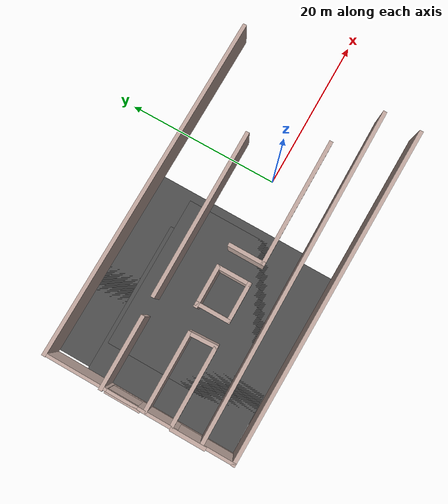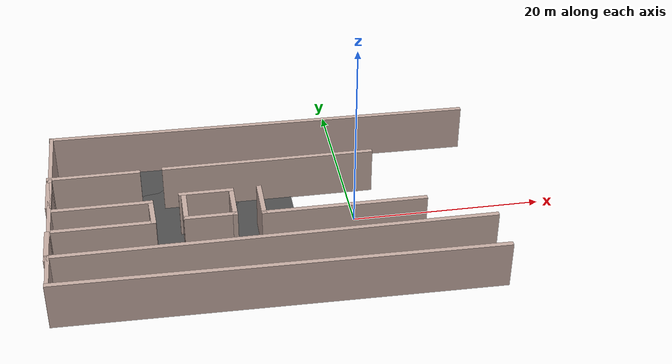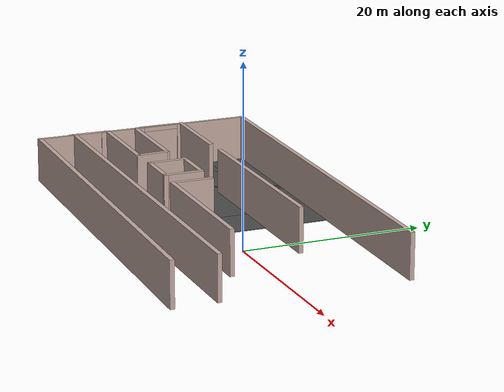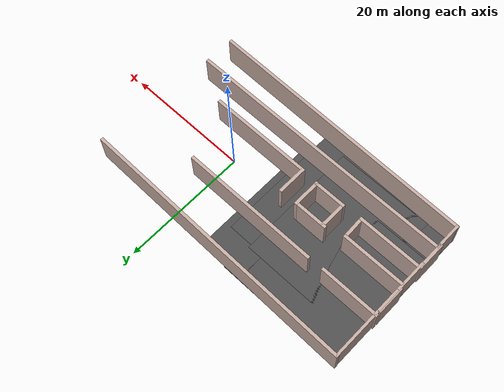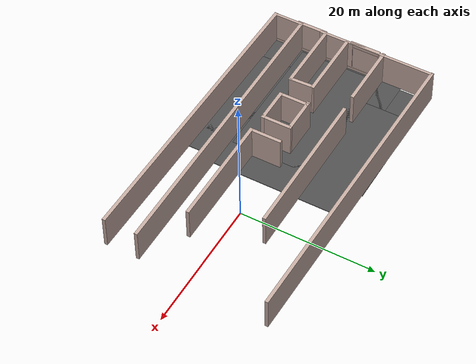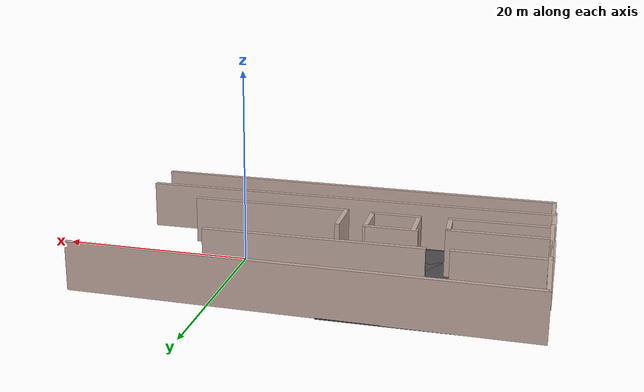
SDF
<sdf version="1.6">
 <model name="engineering_815">
  <link name="Wall_345">
   <pose>-30.9928 0.350371 0 0 0 -1.5708</pose>
   <visual name="Wall_345_Visual_3">
    <pose>10.2836 0 2.75 0 -0 0</pose>
    <geometry><box><size>4.43242 0.4 4.5</size></box></geometry>
    <material>
     <script><uri>file://media/materials/scripts/gazebo.material</uri><name>Gazebo/Grey</name></script>
     <ambient>0.760784 0.662745 0.627451 1</ambient>
     <diffuse>0.7 0.7 0.7 1</diffuse>
     <specular>0.01 0.01 0.01 1</specular>
     <emissive>0 0 0 1</emissive>
    </material>
   </visual>
   <visual name="Wall_345_Visual_2">
    <pose>2.46579 0 2.75 0 -0 0</pose>
    <geometry><box><size>5.20312 0.4 4.5</size></box></geometry>
    <material>
     <script><uri>file://media/materials/scripts/gazebo.material</uri><name>Gazebo/Grey</name></script>
     <ambient>0.760784 0.662745 0.627451 1</ambient>
     <diffuse>0.7 0.7 0.7 1</diffuse>
     <specular>0.01 0.01 0.01 1</specular>
     <emissive>0 0 0 1</emissive>
    </material>
   </visual>
   <visual name="Wall_345_Visual_4">
    <pose>-2.13577 0 4.75 0 -0 0</pose>
    <geometry><box><size>4 0.4 0.5</size></box></geometry>
    <material>
     <script><uri>file://media/materials/scripts/gazebo.material</uri><name>Gazebo/Grey</name></script>
     <ambient>0.760784 0.662745 0.627451 1</ambient>
     <diffuse>0.7 0.7 0.7 1</diffuse>
     <specular>0.01 0.01 0.01 1</specular>
     <emissive>0 0 0 1</emissive>
    </material>
   </visual>
   <visual name="Wall_345_Visual_1">
    <pose>4.182 0 0.25 0 -0 0</pose>
    <geometry><box><size>16.6355 0.4 0.5</size></box></geometry>
    <material>
     <script><uri>file://media/materials/scripts/gazebo.material</uri><name>Gazebo/Grey</name></script>
     <ambient>0.760784 0.662745 0.627451 1</ambient>
     <diffuse>0.7 0.7 0.7 1</diffuse>
     <specular>0.01 0.01 0.01 1</specular>
     <emissive>0 0 0 1</emissive>
    </material>
   </visual>
   <visual name="Wall_345_Visual_0">
    <pose>-8.31777 0 2.5 0 -0 0</pose>
    <geometry><box><size>8.36401 0.4 5</size></box></geometry>
    <material>
     <script><uri>file://media/materials/scripts/gazebo.material</uri><name>Gazebo/Grey</name></script>
     <ambient>0.760784 0.662745 0.627451 1</ambient>
     <diffuse>0.7 0.7 0.7 1</diffuse>
     <specular>0.01 0.01 0.01 1</specular>
     <emissive>0 0 0 1</emissive>
    </material>
   </visual>
   <collision name="Wall_345_Collision_4">
    <pose>-2.13577 0 4.75 0 -0 0</pose>
    <geometry><box><size>4 0.4 0.5</size></box></geometry>
    <surface>
     <friction>
      <ode><mu>1</mu><mu2>1</mu2><fdir1>0 0 0</fdir1><slip1>0</slip1><slip2>0</slip2></ode>
      <torsional>
       <coefficient>1</coefficient>
       <patch_radius>0</patch_radius>
       <surface_radius>0</surface_radius>
       <use_patch_radius>1</use_patch_radius>
       <ode><slip>0</slip></ode>
      </torsional>
     </friction>
     <bounce><restitution_coefficient>0</restitution_coefficient><threshold>1e+06</threshold></bounce>
     <contact>
      <collide_without_contact>0</collide_without_contact>
      <collide_without_contact_bitmask>1</collide_without_contact_bitmask>
      <collide_bitmask>1</collide_bitmask>
      <ode>
       <soft_cfm>0</soft_cfm>
       <soft_erp>0.2</soft_erp>
       <kp>1e+13</kp>
       <kd>1</kd>
       <max_vel>0.01</max_vel>
       <min_depth>0</min_depth>
      </ode>
      <bullet>
       <split_impulse>1</split_impulse>
       <split_impulse_penetration_threshold>-0.01</split_impulse_penetration_threshold>
       <soft_cfm>0</soft_cfm>
       <soft_erp>0.2</soft_erp>
       <kp>1e+13</kp>
       <kd>1</kd>
      </bullet>
     </contact>
    </surface>
   </collision>
   <collision name="Wall_345_Collision_3">
    <pose>10.2836 0 2.75 0 -0 0</pose>
    <geometry><box><size>4.43242 0.4 4.5</size></box></geometry>
    <surface>
     <friction>
      <ode><mu>1</mu><mu2>1</mu2><fdir1>0 0 0</fdir1><slip1>0</slip1><slip2>0</slip2></ode>
      <torsional>
       <coefficient>1</coefficient>
       <patch_radius>0</patch_radius>
       <surface_radius>0</surface_radius>
       <use_patch_radius>1</use_patch_radius>
       <ode><slip>0</slip></ode>
      </torsional>
     </friction>
     <bounce><restitution_coefficient>0</restitution_coefficient><threshold>1e+06</threshold></bounce>
     <contact>
      <collide_without_contact>0</collide_without_contact>
      <collide_without_contact_bitmask>1</collide_without_contact_bitmask>
      <collide_bitmask>1</collide_bitmask>
      <ode>
       <soft_cfm>0</soft_cfm>
       <soft_erp>0.2</soft_erp>
       <kp>1e+13</kp>
       <kd>1</kd>
       <max_vel>0.01</max_vel>
       <min_depth>0</min_depth>
      </ode>
      <bullet>
       <split_impulse>1</split_impulse>
       <split_impulse_penetration_threshold>-0.01</split_impulse_penetration_threshold>
       <soft_cfm>0</soft_cfm>
       <soft_erp>0.2</soft_erp>
       <kp>1e+13</kp>
       <kd>1</kd>
      </bullet>
     </contact>
    </surface>
   </collision>
   <collision name="Wall_345_Collision_1">
    <pose>4.182 0 0.25 0 -0 0</pose>
    <geometry><box><size>16.6355 0.4 0.5</size></box></geometry>
    <surface>
     <friction>
      <ode><mu>1</mu><mu2>1</mu2><fdir1>0 0 0</fdir1><slip1>0</slip1><slip2>0</slip2></ode>
      <torsional>
       <coefficient>1</coefficient>
       <patch_radius>0</patch_radius>
       <surface_radius>0</surface_radius>
       <use_patch_radius>1</use_patch_radius>
       <ode><slip>0</slip></ode>
      </torsional>
     </friction>
     <bounce><restitution_coefficient>0</restitution_coefficient><threshold>1e+06</threshold></bounce>
     <contact>
      <collide_without_contact>0</collide_without_contact>
      <collide_without_contact_bitmask>1</collide_without_contact_bitmask>
      <collide_bitmask>1</collide_bitmask>
      <ode>
       <soft_cfm>0</soft_cfm>
       <soft_erp>0.2</soft_erp>
       <kp>1e+13</kp>
       <kd>1</kd>
       <max_vel>0.01</max_vel>
       <min_depth>0</min_depth>
      </ode>
      <bullet>
       <split_impulse>1</split_impulse>
       <split_impulse_penetration_threshold>-0.01</split_impulse_penetration_threshold>
       <soft_cfm>0</soft_cfm>
       <soft_erp>0.2</soft_erp>
       <kp>1e+13</kp>
       <kd>1</kd>
      </bullet>
     </contact>
    </surface>
   </collision>
   <collision name="Wall_345_Collision_2">
    <pose>2.46579 0 2.75 0 -0 0</pose>
    <geometry><box><size>5.20312 0.4 4.5</size></box></geometry>
    <surface>
     <friction>
      <ode><mu>1</mu><mu2>1</mu2><fdir1>0 0 0</fdir1><slip1>0</slip1><slip2>0</slip2></ode>
      <torsional>
       <coefficient>1</coefficient>
       <patch_radius>0</patch_radius>
       <surface_radius>0</surface_radius>
       <use_patch_radius>1</use_patch_radius>
       <ode><slip>0</slip></ode>
      </torsional>
     </friction>
     <bounce><restitution_coefficient>0</restitution_coefficient><threshold>1e+06</threshold></bounce>
     <contact>
      <collide_without_contact>0</collide_without_contact>
      <collide_without_contact_bitmask>1</collide_without_contact_bitmask>
      <collide_bitmask>1</collide_bitmask>
      <ode>
       <soft_cfm>0</soft_cfm>
       <soft_erp>0.2</soft_erp>
       <kp>1e+13</kp>
       <kd>1</kd>
       <max_vel>0.01</max_vel>
       <min_depth>0</min_depth>
      </ode>
      <bullet>
       <split_impulse>1</split_impulse>
       <split_impulse_penetration_threshold>-0.01</split_impulse_penetration_threshold>
       <soft_cfm>0</soft_cfm>
       <soft_erp>0.2</soft_erp>
       <kp>1e+13</kp>
       <kd>1</kd>
      </bullet>
     </contact>
    </surface>
   </collision>
   <collision name="Wall_345_Collision_0">
    <pose>-8.31777 0 2.5 0 -0 0</pose>
    <geometry><box><size>8.36401 0.4 5</size></box></geometry>
    <surface>
     <friction>
      <ode><mu>1</mu><mu2>1</mu2><fdir1>0 0 0</fdir1><slip1>0</slip1><slip2>0</slip2></ode>
      <torsional>
       <coefficient>1</coefficient>
       <patch_radius>0</patch_radius>
       <surface_radius>0</surface_radius>
       <use_patch_radius>1</use_patch_radius>
       <ode><slip>0</slip></ode>
      </torsional>
     </friction>
     <bounce><restitution_coefficient>0</restitution_coefficient><threshold>1e+06</threshold></bounce>
     <contact>
      <collide_without_contact>0</collide_without_contact>
      <collide_without_contact_bitmask>1</collide_without_contact_bitmask>
      <collide_bitmask>1</collide_bitmask>
      <ode>
       <soft_cfm>0</soft_cfm>
       <soft_erp>0.2</soft_erp>
       <kp>1e+13</kp>
       <kd>1</kd>
       <max_vel>0.01</max_vel>
       <min_depth>0</min_depth>
      </ode>
      <bullet>
       <split_impulse>1</split_impulse>
       <split_impulse_penetration_threshold>-0.01</split_impulse_penetration_threshold>
       <soft_cfm>0</soft_cfm>
       <soft_erp>0.2</soft_erp>
       <kp>1e+13</kp>
       <kd>1</kd>
      </bullet>
     </contact>
    </surface>
   </collision>
  </link>
  <link name="Wall_349">
   <pose>-8.43279 12.3579 0 0 -0 3.12863</pose>
   <visual name="Wall_349_Visual">
    <pose>0 0 2.5 0 -0 0</pose>
    <geometry><box><size>45.6238 0.5 5</size></box></geometry>
    <material>
     <script><uri>file://media/materials/scripts/gazebo.material</uri><name>Gazebo/Grey</name></script>
     <ambient>0.760784 0.662745 0.627451 1</ambient>
     <diffuse>0.7 0.7 0.7 1</diffuse>
     <specular>0.01 0.01 0.01 1</specular>
     <emissive>0 0 0 1</emissive>
    </material>
   </visual>
   <collision name="Wall_349_Collision">
    <pose>0 0 2.5 0 -0 0</pose>
    <geometry><box><size>45.6238 0.5 5</size></box></geometry>
    <surface>
     <friction>
      <ode><mu>1</mu><mu2>1</mu2><fdir1>0 0 0</fdir1><slip1>0</slip1><slip2>0</slip2></ode>
      <torsional>
       <coefficient>1</coefficient>
       <patch_radius>0</patch_radius>
       <surface_radius>0</surface_radius>
       <use_patch_radius>1</use_patch_radius>
       <ode><slip>0</slip></ode>
      </torsional>
     </friction>
     <bounce><restitution_coefficient>0</restitution_coefficient><threshold>1e+06</threshold></bounce>
     <contact>
      <collide_without_contact>0</collide_without_contact>
      <collide_without_contact_bitmask>1</collide_without_contact_bitmask>
      <collide_bitmask>1</collide_bitmask>
      <ode>
       <soft_cfm>0</soft_cfm>
       <soft_erp>0.2</soft_erp>
       <kp>1e+13</kp>
       <kd>1</kd>
       <max_vel>0.01</max_vel>
       <min_depth>0</min_depth>
      </ode>
      <bullet>
       <split_impulse>1</split_impulse>
       <split_impulse_penetration_threshold>-0.01</split_impulse_penetration_threshold>
       <soft_cfm>0</soft_cfm>
       <soft_erp>0.2</soft_erp>
       <kp>1e+13</kp>
       <kd>1</kd>
      </bullet>
     </contact>
    </surface>
   </collision>
  </link>
  <link name="Wall_351">
   <pose>-25.8755 -0.471856 0 0 -0 0</pose>
   <visual name="Wall_351_Visual">
    <pose>0 0 2.5 0 -0 0</pose>
    <geometry><box><size>10.35 0.5 5</size></box></geometry>
    <material>
     <script><uri>file://media/materials/scripts/gazebo.material</uri><name>Gazebo/Grey</name></script>
     <ambient>0.760784 0.662745 0.627451 1</ambient>
     <diffuse>0.7 0.7 0.7 1</diffuse>
     <specular>0.01 0.01 0.01 1</specular>
     <emissive>0 0 0 1</emissive>
    </material>
   </visual>
   <collision name="Wall_351_Collision">
    <pose>0 0 2.5 0 -0 0</pose>
    <geometry><box><size>10.35 0.5 5</size></box></geometry>
    <surface>
     <friction>
      <ode><mu>1</mu><mu2>1</mu2><fdir1>0 0 0</fdir1><slip1>0</slip1><slip2>0</slip2></ode>
      <torsional>
       <coefficient>1</coefficient>
       <patch_radius>0</patch_radius>
       <surface_radius>0</surface_radius>
       <use_patch_radius>1</use_patch_radius>
       <ode><slip>0</slip></ode>
      </torsional>
     </friction>
     <bounce><restitution_coefficient>0</restitution_coefficient><threshold>1e+06</threshold></bounce>
     <contact>
      <collide_without_contact>0</collide_without_contact>
      <collide_without_contact_bitmask>1</collide_without_contact_bitmask>
      <collide_bitmask>1</collide_bitmask>
      <ode>
       <soft_cfm>0</soft_cfm>
       <soft_erp>0.2</soft_erp>
       <kp>1e+13</kp>
       <kd>1</kd>
       <max_vel>0.01</max_vel>
       <min_depth>0</min_depth>
      </ode>
      <bullet>
       <split_impulse>1</split_impulse>
       <split_impulse_penetration_threshold>-0.01</split_impulse_penetration_threshold>
       <soft_cfm>0</soft_cfm>
       <soft_erp>0.2</soft_erp>
       <kp>1e+13</kp>
       <kd>1</kd>
      </bullet>
     </contact>
    </surface>
   </collision>
  </link>
  <link name="Wall_352">
   <pose>-20.8797 -2.17745 0 0 0 -1.52833</pose>
   <visual name="Wall_352_Visual">
    <pose>0 0 2.5 0 -0 0</pose>
    <geometry><box><size>3.83327 0.5 5</size></box></geometry>
    <material>
     <script><uri>file://media/materials/scripts/gazebo.material</uri><name>Gazebo/Grey</name></script>
     <ambient>0.760784 0.662745 0.627451 1</ambient>
     <diffuse>0.7 0.7 0.7 1</diffuse>
     <specular>0.01 0.01 0.01 1</specular>
     <emissive>0 0 0 1</emissive>
    </material>
   </visual>
   <collision name="Wall_352_Collision">
    <pose>0 0 2.5 0 -0 0</pose>
    <geometry><box><size>3.83327 0.5 5</size></box></geometry>
    <surface>
     <friction>
      <ode><mu>1</mu><mu2>1</mu2><fdir1>0 0 0</fdir1><slip1>0</slip1><slip2>0</slip2></ode>
      <torsional>
       <coefficient>1</coefficient>
       <patch_radius>0</patch_radius>
       <surface_radius>0</surface_radius>
       <use_patch_radius>1</use_patch_radius>
       <ode><slip>0</slip></ode>
      </torsional>
     </friction>
     <bounce><restitution_coefficient>0</restitution_coefficient><threshold>1e+06</threshold></bounce>
     <contact>
      <collide_without_contact>0</collide_without_contact>
      <collide_without_contact_bitmask>1</collide_without_contact_bitmask>
      <collide_bitmask>1</collide_bitmask>
      <ode>
       <soft_cfm>0</soft_cfm>
       <soft_erp>0.2</soft_erp>
       <kp>1e+13</kp>
       <kd>1</kd>
       <max_vel>0.01</max_vel>
       <min_depth>0</min_depth>
      </ode>
      <bullet>
       <split_impulse>1</split_impulse>
       <split_impulse_penetration_threshold>-0.01</split_impulse_penetration_threshold>
       <soft_cfm>0</soft_cfm>
       <soft_erp>0.2</soft_erp>
       <kp>1e+13</kp>
       <kd>1</kd>
      </bullet>
     </contact>
    </surface>
   </collision>
  </link>
  <link name="Wall_353">
   <pose>-25.7744 -3.88304 0 0 -0 3.14159</pose>
   <visual name="Wall_353_Visual">
    <pose>0 0 2.5 0 -0 0</pose>
    <geometry><box><size>10.35 0.5 5</size></box></geometry>
    <material>
     <script><uri>file://media/materials/scripts/gazebo.material</uri><name>Gazebo/Grey</name></script>
     <ambient>0.760784 0.662745 0.627451 1</ambient>
     <diffuse>0.7 0.7 0.7 1</diffuse>
     <specular>0.01 0.01 0.01 1</specular>
     <emissive>0 0 0 1</emissive>
    </material>
   </visual>
   <collision name="Wall_353_Collision">
    <pose>0 0 2.5 0 -0 0</pose>
    <geometry><box><size>10.35 0.5 5</size></box></geometry>
    <surface>
     <friction>
      <ode><mu>1</mu><mu2>1</mu2><fdir1>0 0 0</fdir1><slip1>0</slip1><slip2>0</slip2></ode>
      <torsional>
       <coefficient>1</coefficient>
       <patch_radius>0</patch_radius>
       <surface_radius>0</surface_radius>
       <use_patch_radius>1</use_patch_radius>
       <ode><slip>0</slip></ode>
      </torsional>
     </friction>
     <bounce><restitution_coefficient>0</restitution_coefficient><threshold>1e+06</threshold></bounce>
     <contact>
      <collide_without_contact>0</collide_without_contact>
      <collide_without_contact_bitmask>1</collide_without_contact_bitmask>
      <collide_bitmask>1</collide_bitmask>
      <ode>
       <soft_cfm>0</soft_cfm>
       <soft_erp>0.2</soft_erp>
       <kp>1e+13</kp>
       <kd>1</kd>
       <max_vel>0.01</max_vel>
       <min_depth>0</min_depth>
      </ode>
      <bullet>
       <split_impulse>1</split_impulse>
       <split_impulse_penetration_threshold>-0.01</split_impulse_penetration_threshold>
       <soft_cfm>0</soft_cfm>
       <soft_erp>0.2</soft_erp>
       <kp>1e+13</kp>
       <kd>1</kd>
      </bullet>
     </contact>
    </surface>
   </collision>
  </link>
  <link name="Wall_355">
   <pose>-9.11879 -7.79963 0 0 -0 0</pose>
   <visual name="Wall_355_Visual">
    <pose>0 0 2.5 0 -0 0</pose>
    <geometry><box><size>44.3504 0.5 5</size></box></geometry>
    <material>
     <script><uri>file://media/materials/scripts/gazebo.material</uri><name>Gazebo/Grey</name></script>
     <ambient>0.760784 0.662745 0.627451 1</ambient>
     <diffuse>0.7 0.7 0.7 1</diffuse>
     <specular>0.01 0.01 0.01 1</specular>
     <emissive>0 0 0 1</emissive>
    </material>
   </visual>
   <collision name="Wall_355_Collision">
    <pose>0 0 2.5 0 -0 0</pose>
    <geometry><box><size>44.3504 0.5 5</size></box></geometry>
    <surface>
     <friction>
      <ode><mu>1</mu><mu2>1</mu2><fdir1>0 0 0</fdir1><slip1>0</slip1><slip2>0</slip2></ode>
      <torsional>
       <coefficient>1</coefficient>
       <patch_radius>0</patch_radius>
       <surface_radius>0</surface_radius>
       <use_patch_radius>1</use_patch_radius>
       <ode><slip>0</slip></ode>
      </torsional>
     </friction>
     <bounce><restitution_coefficient>0</restitution_coefficient><threshold>1e+06</threshold></bounce>
     <contact>
      <collide_without_contact>0</collide_without_contact>
      <collide_without_contact_bitmask>1</collide_without_contact_bitmask>
      <collide_bitmask>1</collide_bitmask>
      <ode>
       <soft_cfm>0</soft_cfm>
       <soft_erp>0.2</soft_erp>
       <kp>1e+13</kp>
       <kd>1</kd>
       <max_vel>0.01</max_vel>
       <min_depth>0</min_depth>
      </ode>
      <bullet>
       <split_impulse>1</split_impulse>
       <split_impulse_penetration_threshold>-0.01</split_impulse_penetration_threshold>
       <soft_cfm>0</soft_cfm>
       <soft_erp>0.2</soft_erp>
       <kp>1e+13</kp>
       <kd>1</kd>
      </bullet>
     </contact>
    </surface>
   </collision>
  </link>
  <link name="Wall_357">
   <pose>-9.09328 -12.2996 0 0 -0 3.12561</pose>
   <visual name="Wall_357_Visual">
    <pose>0 0 2.5 0 -0 0</pose>
    <geometry><box><size>44.3046 0.5 5</size></box></geometry>
    <material>
     <script><uri>file://media/materials/scripts/gazebo.material</uri><name>Gazebo/Grey</name></script>
     <ambient>0.760784 0.662745 0.627451 1</ambient>
     <diffuse>0.7 0.7 0.7 1</diffuse>
     <specular>0.01 0.01 0.01 1</specular>
     <emissive>0 0 0 1</emissive>
    </material>
   </visual>
   <collision name="Wall_357_Collision">
    <pose>0 0 2.5 0 -0 0</pose>
    <geometry><box><size>44.3046 0.5 5</size></box></geometry>
    <surface>
     <friction>
      <ode><mu>1</mu><mu2>1</mu2><fdir1>0 0 0</fdir1><slip1>0</slip1><slip2>0</slip2></ode>
      <torsional>
       <coefficient>1</coefficient>
       <patch_radius>0</patch_radius>
       <surface_radius>0</surface_radius>
       <use_patch_radius>1</use_patch_radius>
       <ode><slip>0</slip></ode>
      </torsional>
     </friction>
     <bounce><restitution_coefficient>0</restitution_coefficient><threshold>1e+06</threshold></bounce>
     <contact>
      <collide_without_contact>0</collide_without_contact>
      <collide_without_contact_bitmask>1</collide_without_contact_bitmask>
      <collide_bitmask>1</collide_bitmask>
      <ode>
       <soft_cfm>0</soft_cfm>
       <soft_erp>0.2</soft_erp>
       <kp>1e+13</kp>
       <kd>1</kd>
       <max_vel>0.01</max_vel>
       <min_depth>0</min_depth>
      </ode>
      <bullet>
       <split_impulse>1</split_impulse>
       <split_impulse_penetration_threshold>-0.01</split_impulse_penetration_threshold>
       <soft_cfm>0</soft_cfm>
       <soft_erp>0.2</soft_erp>
       <kp>1e+13</kp>
       <kd>1</kd>
      </bullet>
     </contact>
    </surface>
   </collision>
  </link>
  <link name="Wall_359">
   <pose>-17.5998 -1.64163 0 0 0 -1.5708</pose>
   <visual name="Wall_359_Visual">
    <pose>0 0 2.5 0 -0 0</pose>
    <geometry><box><size>4.59973 0.5 5</size></box></geometry>
    <material>
     <script><uri>file://media/materials/scripts/gazebo.material</uri><name>Gazebo/Grey</name></script>
     <ambient>0.760784 0.662745 0.627451 1</ambient>
     <diffuse>0.7 0.7 0.7 1</diffuse>
     <specular>0.01 0.01 0.01 1</specular>
     <emissive>0 0 0 1</emissive>
    </material>
   </visual>
   <collision name="Wall_359_Collision">
    <pose>0 0 2.5 0 -0 0</pose>
    <geometry><box><size>4.59973 0.5 5</size></box></geometry>
    <surface>
     <friction>
      <ode><mu>1</mu><mu2>1</mu2><fdir1>0 0 0</fdir1><slip1>0</slip1><slip2>0</slip2></ode>
      <torsional>
       <coefficient>1</coefficient>
       <patch_radius>0</patch_radius>
       <surface_radius>0</surface_radius>
       <use_patch_radius>1</use_patch_radius>
       <ode><slip>0</slip></ode>
      </torsional>
     </friction>
     <bounce><restitution_coefficient>0</restitution_coefficient><threshold>1e+06</threshold></bounce>
     <contact>
      <collide_without_contact>0</collide_without_contact>
      <collide_without_contact_bitmask>1</collide_without_contact_bitmask>
      <collide_bitmask>1</collide_bitmask>
      <ode>
       <soft_cfm>0</soft_cfm>
       <soft_erp>0.2</soft_erp>
       <kp>1e+13</kp>
       <kd>1</kd>
       <max_vel>0.01</max_vel>
       <min_depth>0</min_depth>
      </ode>
      <bullet>
       <split_impulse>1</split_impulse>
       <split_impulse_penetration_threshold>-0.01</split_impulse_penetration_threshold>
       <soft_cfm>0</soft_cfm>
       <soft_erp>0.2</soft_erp>
       <kp>1e+13</kp>
       <kd>1</kd>
      </bullet>
     </contact>
    </surface>
   </collision>
  </link>
  <link name="Wall_359_clone">
   <pose>-31.1334 2.28437 0 0 0 -1.5708</pose>
   <visual name="Wall_359_Visual">
    <pose>0 0 2.5 0 -0 0</pose>
    <geometry><box><size>4.59973 0.5 5</size></box></geometry>
    <material>
     <script><uri>file://media/materials/scripts/gazebo.material</uri><name>Gazebo/Grey</name></script>
     <ambient>0.760784 0.662745 0.627451 1</ambient>
     <diffuse>0.7 0.7 0.7 1</diffuse>
     <specular>0.01 0.01 0.01 1</specular>
     <emissive>0 0 0 1</emissive>
     <shader type="pixel"/>
    </material>
   </visual>
   <collision name="Wall_359_Collision">
    <pose>0 0 2.5 0 -0 0</pose>
    <geometry><box><size>4.59973 0.5 5</size></box></geometry>
    <surface>
     <friction>
      <ode><mu>1</mu><mu2>1</mu2><fdir1>0 0 0</fdir1><slip1>0</slip1><slip2>0</slip2></ode>
      <torsional>
       <coefficient>1</coefficient>
       <patch_radius>0</patch_radius>
       <surface_radius>0</surface_radius>
       <use_patch_radius>1</use_patch_radius>
       <ode><slip>0</slip></ode>
      </torsional>
     </friction>
     <bounce><restitution_coefficient>0</restitution_coefficient><threshold>1e+06</threshold></bounce>
     <contact>
      <collide_without_contact>0</collide_without_contact>
      <collide_without_contact_bitmask>1</collide_without_contact_bitmask>
      <collide_bitmask>1</collide_bitmask>
      <ode>
       <soft_cfm>0</soft_cfm>
       <soft_erp>0.2</soft_erp>
       <kp>1e+13</kp>
       <kd>1</kd>
       <max_vel>0.01</max_vel>
       <min_depth>0</min_depth>
      </ode>
      <bullet>
       <split_impulse>1</split_impulse>
       <split_impulse_penetration_threshold>-0.01</split_impulse_penetration_threshold>
       <soft_cfm>0</soft_cfm>
       <soft_erp>0.2</soft_erp>
       <kp>1e+13</kp>
       <kd>1</kd>
      </bullet>
     </contact>
    </surface>
   </collision>
  </link>
  <link name="Wall_359_clone_0">
   <pose>-31.1127 -6.13704 0 0 0 -1.5708</pose>
   <visual name="Wall_359_Visual">
    <pose>0 0 2.5 0 -0 0</pose>
    <geometry><box><size>4.59973 0.5 5</size></box></geometry>
    <material>
     <script><uri>file://media/materials/scripts/gazebo.material</uri><name>Gazebo/Grey</name></script>
     <ambient>0.760784 0.662745 0.627451 1</ambient>
     <diffuse>0.7 0.7 0.7 1</diffuse>
     <specular>0.01 0.01 0.01 1</specular>
     <emissive>0 0 0 1</emissive>
     <shader type="pixel"/>
    </material>
   </visual>
   <collision name="Wall_359_Collision">
    <pose>0 0 2.5 0 -0 0</pose>
    <geometry><box><size>4.59973 0.5 5</size></box></geometry>
    <surface>
     <friction>
      <ode><mu>1</mu><mu2>1</mu2><fdir1>0 0 0</fdir1><slip1>0</slip1><slip2>0</slip2></ode>
      <torsional>
       <coefficient>1</coefficient>
       <patch_radius>0</patch_radius>
       <surface_radius>0</surface_radius>
       <use_patch_radius>1</use_patch_radius>
       <ode><slip>0</slip></ode>
      </torsional>
     </friction>
     <bounce><restitution_coefficient>0</restitution_coefficient><threshold>1e+06</threshold></bounce>
     <contact>
      <collide_without_contact>0</collide_without_contact>
      <collide_without_contact_bitmask>1</collide_without_contact_bitmask>
      <collide_bitmask>1</collide_bitmask>
      <ode>
       <soft_cfm>0</soft_cfm>
       <soft_erp>0.2</soft_erp>
       <kp>1e+13</kp>
       <kd>1</kd>
       <max_vel>0.01</max_vel>
       <min_depth>0</min_depth>
      </ode>
      <bullet>
       <split_impulse>1</split_impulse>
       <split_impulse_penetration_threshold>-0.01</split_impulse_penetration_threshold>
       <soft_cfm>0</soft_cfm>
       <soft_erp>0.2</soft_erp>
       <kp>1e+13</kp>
       <kd>1</kd>
      </bullet>
     </contact>
    </surface>
   </collision>
  </link>
  <link name="Wall_360">
   <pose>-15.1748 -3.69163 0 0 -0 0</pose>
   <visual name="Wall_360_Visual">
    <pose>0 0 2.5 0 -0 0</pose>
    <geometry><box><size>5.35024 0.5 5</size></box></geometry>
    <material>
     <script><uri>file://media/materials/scripts/gazebo.material</uri><name>Gazebo/Grey</name></script>
     <ambient>0.760784 0.662745 0.627451 1</ambient>
     <diffuse>0.7 0.7 0.7 1</diffuse>
     <specular>0.01 0.01 0.01 1</specular>
     <emissive>0 0 0 1</emissive>
    </material>
   </visual>
   <collision name="Wall_360_Collision">
    <pose>0 0 2.5 0 -0 0</pose>
    <geometry><box><size>5.35024 0.5 5</size></box></geometry>
    <surface>
     <friction>
      <ode><mu>1</mu><mu2>1</mu2><fdir1>0 0 0</fdir1><slip1>0</slip1><slip2>0</slip2></ode>
      <torsional>
       <coefficient>1</coefficient>
       <patch_radius>0</patch_radius>
       <surface_radius>0</surface_radius>
       <use_patch_radius>1</use_patch_radius>
       <ode><slip>0</slip></ode>
      </torsional>
     </friction>
     <bounce><restitution_coefficient>0</restitution_coefficient><threshold>1e+06</threshold></bounce>
     <contact>
      <collide_without_contact>0</collide_without_contact>
      <collide_without_contact_bitmask>1</collide_without_contact_bitmask>
      <collide_bitmask>1</collide_bitmask>
      <ode>
       <soft_cfm>0</soft_cfm>
       <soft_erp>0.2</soft_erp>
       <kp>1e+13</kp>
       <kd>1</kd>
       <max_vel>0.01</max_vel>
       <min_depth>0</min_depth>
      </ode>
      <bullet>
       <split_impulse>1</split_impulse>
       <split_impulse_penetration_threshold>-0.01</split_impulse_penetration_threshold>
       <soft_cfm>0</soft_cfm>
       <soft_erp>0.2</soft_erp>
       <kp>1e+13</kp>
       <kd>1</kd>
      </bullet>
     </contact>
    </surface>
   </collision>
  </link>
  <link name="Wall_361">
   <pose>-12.7498 -1.64163 0 0 -0 1.5708</pose>
   <visual name="Wall_361_Visual">
    <pose>0 0 2.5 0 -0 0</pose>
    <geometry><box><size>4.6 0.5 5</size></box></geometry>
    <material>
     <script><uri>file://media/materials/scripts/gazebo.material</uri><name>Gazebo/Grey</name></script>
     <ambient>0.760784 0.662745 0.627451 1</ambient>
     <diffuse>0.7 0.7 0.7 1</diffuse>
     <specular>0.01 0.01 0.01 1</specular>
     <emissive>0 0 0 1</emissive>
    </material>
   </visual>
   <collision name="Wall_361_Collision">
    <pose>0 0 2.5 0 -0 0</pose>
    <geometry><box><size>4.6 0.5 5</size></box></geometry>
    <surface>
     <friction>
      <ode><mu>1</mu><mu2>1</mu2><fdir1>0 0 0</fdir1><slip1>0</slip1><slip2>0</slip2></ode>
      <torsional>
       <coefficient>1</coefficient>
       <patch_radius>0</patch_radius>
       <surface_radius>0</surface_radius>
       <use_patch_radius>1</use_patch_radius>
       <ode><slip>0</slip></ode>
      </torsional>
     </friction>
     <bounce><restitution_coefficient>0</restitution_coefficient><threshold>1e+06</threshold></bounce>
     <contact>
      <collide_without_contact>0</collide_without_contact>
      <collide_without_contact_bitmask>1</collide_without_contact_bitmask>
      <collide_bitmask>1</collide_bitmask>
      <ode>
       <soft_cfm>0</soft_cfm>
       <soft_erp>0.2</soft_erp>
       <kp>1e+13</kp>
       <kd>1</kd>
       <max_vel>0.01</max_vel>
       <min_depth>0</min_depth>
      </ode>
      <bullet>
       <split_impulse>1</split_impulse>
       <split_impulse_penetration_threshold>-0.01</split_impulse_penetration_threshold>
       <soft_cfm>0</soft_cfm>
       <soft_erp>0.2</soft_erp>
       <kp>1e+13</kp>
       <kd>1</kd>
      </bullet>
     </contact>
    </surface>
   </collision>
  </link>
  <link name="Wall_362">
   <pose>-15.2998 0.408371 0 0 -0 3.14159</pose>
   <visual name="Wall_362_Visual">
    <pose>0 0 2.5 0 -0 0</pose>
    <geometry><box><size>5.59976 0.5 5</size></box></geometry>
    <material>
     <script><uri>file://media/materials/scripts/gazebo.material</uri><name>Gazebo/Grey</name></script>
     <ambient>0.760784 0.662745 0.627451 1</ambient>
     <diffuse>0.7 0.7 0.7 1</diffuse>
     <specular>0.01 0.01 0.01 1</specular>
     <emissive>0 0 0 1</emissive>
    </material>
   </visual>
   <collision name="Wall_362_Collision">
    <pose>0 0 2.5 0 -0 0</pose>
    <geometry><box><size>5.59976 0.5 5</size></box></geometry>
    <surface>
     <friction>
      <ode><mu>1</mu><mu2>1</mu2><fdir1>0 0 0</fdir1><slip1>0</slip1><slip2>0</slip2></ode>
      <torsional>
       <coefficient>1</coefficient>
       <patch_radius>0</patch_radius>
       <surface_radius>0</surface_radius>
       <use_patch_radius>1</use_patch_radius>
       <ode><slip>0</slip></ode>
      </torsional>
     </friction>
     <bounce><restitution_coefficient>0</restitution_coefficient><threshold>1e+06</threshold></bounce>
     <contact>
      <collide_without_contact>0</collide_without_contact>
      <collide_without_contact_bitmask>1</collide_without_contact_bitmask>
      <collide_bitmask>1</collide_bitmask>
      <ode>
       <soft_cfm>0</soft_cfm>
       <soft_erp>0.2</soft_erp>
       <kp>1e+13</kp>
       <kd>1</kd>
       <max_vel>0.01</max_vel>
       <min_depth>0</min_depth>
      </ode>
      <bullet>
       <split_impulse>1</split_impulse>
       <split_impulse_penetration_threshold>-0.01</split_impulse_penetration_threshold>
       <soft_cfm>0</soft_cfm>
       <soft_erp>0.2</soft_erp>
       <kp>1e+13</kp>
       <kd>1</kd>
      </bullet>
     </contact>
    </surface>
   </collision>
  </link>
  <link name="Wall_364">
   <pose>-9.88679 -1.76663 0 0 0 -1.5708</pose>
   <visual name="Wall_364_Visual">
    <pose>0 0 2.5 0 -0 0</pose>
    <geometry><box><size>4.84973 0.5 5</size></box></geometry>
    <material>
     <script><uri>file://media/materials/scripts/gazebo.material</uri><name>Gazebo/Grey</name></script>
     <ambient>0.760784 0.662745 0.627451 1</ambient>
     <diffuse>0.7 0.7 0.7 1</diffuse>
     <specular>0.01 0.01 0.01 1</specular>
     <emissive>0 0 0 1</emissive>
    </material>
   </visual>
   <collision name="Wall_364_Collision">
    <pose>0 0 2.5 0 -0 0</pose>
    <geometry><box><size>4.84973 0.5 5</size></box></geometry>
    <surface>
     <friction>
      <ode><mu>1</mu><mu2>1</mu2><fdir1>0 0 0</fdir1><slip1>0</slip1><slip2>0</slip2></ode>
      <torsional>
       <coefficient>1</coefficient>
       <patch_radius>0</patch_radius>
       <surface_radius>0</surface_radius>
       <use_patch_radius>1</use_patch_radius>
       <ode><slip>0</slip></ode>
      </torsional>
     </friction>
     <bounce><restitution_coefficient>0</restitution_coefficient><threshold>1e+06</threshold></bounce>
     <contact>
      <collide_without_contact>0</collide_without_contact>
      <collide_without_contact_bitmask>1</collide_without_contact_bitmask>
      <collide_bitmask>1</collide_bitmask>
      <ode>
       <soft_cfm>0</soft_cfm>
       <soft_erp>0.2</soft_erp>
       <kp>1e+13</kp>
       <kd>1</kd>
       <max_vel>0.01</max_vel>
       <min_depth>0</min_depth>
      </ode>
      <bullet>
       <split_impulse>1</split_impulse>
       <split_impulse_penetration_threshold>-0.01</split_impulse_penetration_threshold>
       <soft_cfm>0</soft_cfm>
       <soft_erp>0.2</soft_erp>
       <kp>1e+13</kp>
       <kd>1</kd>
      </bullet>
     </contact>
    </surface>
   </collision>
  </link>
  <link name="Wall_365">
   <pose>-1.71178 -3.94163 0 0 -0 0</pose>
   <visual name="Wall_365_Visual">
    <pose>0 0 2.5 0 -0 0</pose>
    <geometry><box><size>16.8498 0.5 5</size></box></geometry>
    <material>
     <script><uri>file://media/materials/scripts/gazebo.material</uri><name>Gazebo/Grey</name></script>
     <ambient>0.760784 0.662745 0.627451 1</ambient>
     <diffuse>0.7 0.7 0.7 1</diffuse>
     <specular>0.01 0.01 0.01 1</specular>
     <emissive>0 0 0 1</emissive>
    </material>
   </visual>
   <collision name="Wall_365_Collision">
    <pose>0 0 2.5 0 -0 0</pose>
    <geometry><box><size>16.8498 0.5 5</size></box></geometry>
    <surface>
     <friction>
      <ode><mu>1</mu><mu2>1</mu2><fdir1>0 0 0</fdir1><slip1>0</slip1><slip2>0</slip2></ode>
      <torsional>
       <coefficient>1</coefficient>
       <patch_radius>0</patch_radius>
       <surface_radius>0</surface_radius>
       <use_patch_radius>1</use_patch_radius>
       <ode><slip>0</slip></ode>
      </torsional>
     </friction>
     <bounce><restitution_coefficient>0</restitution_coefficient><threshold>1e+06</threshold></bounce>
     <contact>
      <collide_without_contact>0</collide_without_contact>
      <collide_without_contact_bitmask>1</collide_without_contact_bitmask>
      <collide_bitmask>1</collide_bitmask>
      <ode>
       <soft_cfm>0</soft_cfm>
       <soft_erp>0.2</soft_erp>
       <kp>1e+13</kp>
       <kd>1</kd>
       <max_vel>0.01</max_vel>
       <min_depth>0</min_depth>
      </ode>
      <bullet>
       <split_impulse>1</split_impulse>
       <split_impulse_penetration_threshold>-0.01</split_impulse_penetration_threshold>
       <soft_cfm>0</soft_cfm>
       <soft_erp>0.2</soft_erp>
       <kp>1e+13</kp>
       <kd>1</kd>
      </bullet>
     </contact>
    </surface>
   </collision>
  </link>
  <link name="Wall_389">
   <pose>-26.5758 5.11037 0 0 -0 0</pose>
   <visual name="Wall_389_Visual">
    <pose>0 0 2.5 0 -0 0</pose>
    <geometry><box><size>9.60043 0.5 5</size></box></geometry>
    <material>
     <script><uri>file://media/materials/scripts/gazebo.material</uri><name>Gazebo/Grey</name></script>
     <ambient>0.760784 0.662745 0.627451 1</ambient>
     <diffuse>0.7 0.7 0.7 1</diffuse>
     <specular>0.01 0.01 0.01 1</specular>
     <emissive>0 0 0 1</emissive>
    </material>
   </visual>
   <collision name="Wall_389_Collision">
    <pose>0 0 2.5 0 -0 0</pose>
    <geometry><box><size>9.60043 0.5 5</size></box></geometry>
    <surface>
     <friction>
      <ode><mu>1</mu><mu2>1</mu2><fdir1>0 0 0</fdir1><slip1>0</slip1><slip2>0</slip2></ode>
      <torsional>
       <coefficient>1</coefficient>
       <patch_radius>0</patch_radius>
       <surface_radius>0</surface_radius>
       <use_patch_radius>1</use_patch_radius>
       <ode><slip>0</slip></ode>
      </torsional>
     </friction>
     <bounce><restitution_coefficient>0</restitution_coefficient><threshold>1e+06</threshold></bounce>
     <contact>
      <collide_without_contact>0</collide_without_contact>
      <collide_without_contact_bitmask>1</collide_without_contact_bitmask>
      <collide_bitmask>1</collide_bitmask>
      <ode>
       <soft_cfm>0</soft_cfm>
       <soft_erp>0.2</soft_erp>
       <kp>1e+13</kp>
       <kd>1</kd>
       <max_vel>0.01</max_vel>
       <min_depth>0</min_depth>
      </ode>
      <bullet>
       <split_impulse>1</split_impulse>
       <split_impulse_penetration_threshold>-0.01</split_impulse_penetration_threshold>
       <soft_cfm>0</soft_cfm>
       <soft_erp>0.2</soft_erp>
       <kp>1e+13</kp>
       <kd>1</kd>
      </bullet>
     </contact>
    </surface>
   </collision>
  </link>
  <link name="Wall_391">
   <pose>-8.32578 5.23337 0 0 -0 0</pose>
   <visual name="Wall_391_Visual">
    <pose>0 0 2.5 0 -0 0</pose>
    <geometry><box><size>22.3503 0.5 5</size></box></geometry>
    <material>
     <script><uri>file://media/materials/scripts/gazebo.material</uri><name>Gazebo/Grey</name></script>
     <ambient>0.760784 0.662745 0.627451 1</ambient>
     <diffuse>0.7 0.7 0.7 1</diffuse>
     <specular>0.01 0.01 0.01 1</specular>
     <emissive>0 0 0 1</emissive>
    </material>
   </visual>
   <collision name="Wall_391_Collision">
    <pose>0 0 2.5 0 -0 0</pose>
    <geometry><box><size>22.3503 0.5 5</size></box></geometry>
    <surface>
     <friction>
      <ode><mu>1</mu><mu2>1</mu2><fdir1>0 0 0</fdir1><slip1>0</slip1><slip2>0</slip2></ode>
      <torsional>
       <coefficient>1</coefficient>
       <patch_radius>0</patch_radius>
       <surface_radius>0</surface_radius>
       <use_patch_radius>1</use_patch_radius>
       <ode><slip>0</slip></ode>
      </torsional>
     </friction>
     <bounce><restitution_coefficient>0</restitution_coefficient><threshold>1e+06</threshold></bounce>
     <contact>
      <collide_without_contact>0</collide_without_contact>
      <collide_without_contact_bitmask>1</collide_without_contact_bitmask>
      <collide_bitmask>1</collide_bitmask>
      <ode>
       <soft_cfm>0</soft_cfm>
       <soft_erp>0.2</soft_erp>
       <kp>1e+13</kp>
       <kd>1</kd>
       <max_vel>0.01</max_vel>
       <min_depth>0</min_depth>
      </ode>
      <bullet>
       <split_impulse>1</split_impulse>
       <split_impulse_penetration_threshold>-0.01</split_impulse_penetration_threshold>
       <soft_cfm>0</soft_cfm>
       <soft_erp>0.2</soft_erp>
       <kp>1e+13</kp>
       <kd>1</kd>
      </bullet>
     </contact>
    </surface>
   </collision>
  </link>
  <model name="asphalt_plane_clone_1">
   <static>1</static>
   <link name="link">
    <collision name="collision"><geometry><box><size>20 20 0.1</size></box></geometry></collision>
    <visual name="visual">
     <cast_shadows>0</cast_shadows>
     <geometry><box><size>20 20 0.1</size></box></geometry>
     <material>
      <script>
       <uri>model://asphalt_plane/materials/scripts</uri>
       <uri>model://asphalt_plane/materials/textures</uri>
       <name>vrc/asphalt</name>
      </script>
     </material>
    </visual>
   </link>
   <pose>-15.9652 2.28437 0 0 -0 0</pose>
  </model>
  <model name="asphalt_plane_clone_2">
   <static>1</static>
   <link name="link">
    <collision name="collision"><geometry><box><size>20 20 0.1</size></box></geometry></collision>
    <visual name="visual">
     <cast_shadows>0</cast_shadows>
     <geometry><box><size>20 20 0.1</size></box></geometry>
     <material>
      <script>
       <uri>model://asphalt_plane/materials/scripts</uri>
       <uri>model://asphalt_plane/materials/textures</uri>
       <name>vrc/asphalt</name>
      </script>
     </material>
    </visual>
   </link>
   <pose>-17.0224 -2.21257 0 0 -0 0</pose>
  </model>
  <model name="asphalt_plane_clone_3">
   <static>1</static>
   <link name="link">
    <collision name="collision"><geometry><box><size>20 20 0.1</size></box></geometry></collision>
    <visual name="visual">
     <cast_shadows>0</cast_shadows>
     <geometry><box><size>20 20 0.1</size></box></geometry>
     <material>
      <script>
       <uri>model://asphalt_plane/materials/scripts</uri>
       <uri>model://asphalt_plane/materials/textures</uri>
       <name>vrc/asphalt</name>
      </script>
     </material>
    </visual>
   </link>
   <pose>-20.5508 2.71384 0 0 -0 0</pose>
  </model>
  <model name="asphalt_plane_clone_4">
   <static>1</static>
   <link name="link">
    <collision name="collision"><geometry><box><size>20 20 0.1</size></box></geometry></collision>
    <visual name="visual">
     <cast_shadows>0</cast_shadows>
     <geometry><box><size>20 20 0.1</size></box></geometry>
     <material>
      <script>
       <uri>model://asphalt_plane/materials/scripts</uri>
       <uri>model://asphalt_plane/materials/textures</uri>
       <name>vrc/asphalt</name>
      </script>
     </material>
    </visual>
   </link>
   <pose>-21.0102 -1.71563 0 0 -0 0</pose>
  </model>
  <model name="door_clone">
   <link name="link">
    <pose>0.481045 1.72626 2.52716 0 -0 0</pose>
    <inertial>
     <inertia><ixx>nan</ixx><ixy>0</ixy><ixz>0</ixz><iyy>nan</iyy><iyz>0</iyz><izz>nan</izz></inertia>
     <mass>0</mass>
    </inertial>
    <visual name="visual">
     <cast_shadows>0</cast_shadows>
     <geometry><box><size>3.53441 0.017772 4.70786</size></box></geometry>
     <material>
      <script>
       <uri>model://grey_wall/materials/scripts</uri>
       <uri>model://grey_wall/materials/textures</uri>
       <name>vrc/grey_wall</name>
      </script>
      <ambient>1 1 1 1</ambient>
      <diffuse>1 1 1 1</diffuse>
      <specular>0 0 0 1</specular>
      <emissive>0 0 0 1</emissive>
     </material>
    </visual>
    <collision name="collision">
     <geometry><box><size>3.53441 0.017772 4.70786</size></box></geometry>
     <surface>
      <friction>
       <ode><mu>1</mu><mu2>1</mu2><fdir1>0 0 0</fdir1><slip1>0</slip1><slip2>0</slip2></ode>
       <torsional>
        <coefficient>1</coefficient>
        <patch_radius>0</patch_radius>
        <surface_radius>0</surface_radius>
        <use_patch_radius>1</use_patch_radius>
        <ode><slip>0</slip></ode>
       </torsional>
      </friction>
      <bounce><restitution_coefficient>0</restitution_coefficient><threshold>1e+06</threshold></bounce>
      <contact>
       <collide_without_contact>0</collide_without_contact>
       <collide_without_contact_bitmask>1</collide_without_contact_bitmask>
       <collide_bitmask>1</collide_bitmask>
       <ode>
        <soft_cfm>0</soft_cfm>
        <soft_erp>0.2</soft_erp>
        <kp>1e+13</kp>
        <kd>1</kd>
        <max_vel>0.01</max_vel>
        <min_depth>0</min_depth>
       </ode>
       <bullet>
        <split_impulse>1</split_impulse>
        <split_impulse_penetration_threshold>-0.01</split_impulse_penetration_threshold>
        <soft_cfm>0</soft_cfm>
        <soft_erp>0.2</soft_erp>
        <kp>1e+13</kp>
        <kd>1</kd>
       </bullet>
      </contact>
     </surface>
    </collision>
   </link>
   <static>1</static>
   <pose>-20.8243 -9.3102 0 0 -0 0</pose>
  </model>
  <static>1</static>
 </model>
</sdf>
